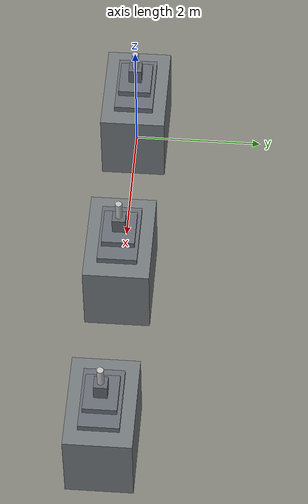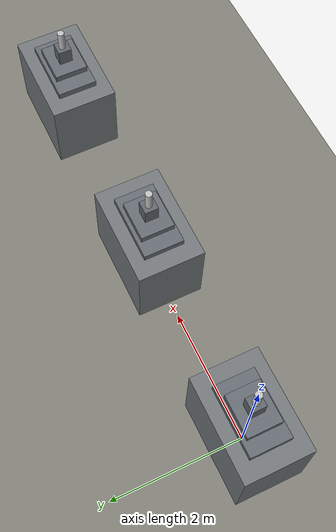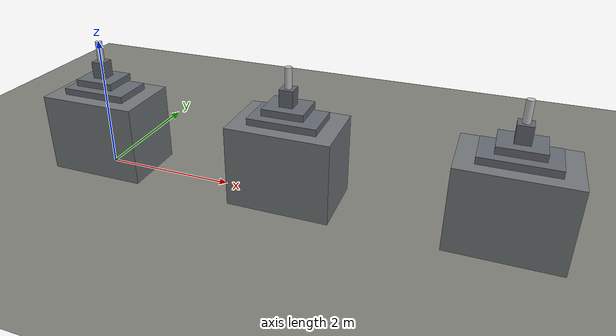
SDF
<?xml version="1.0" ?>
<sdf version="1.9">
  <world name="cnc_factory">

    <!-- Physics                                                       -->
    <physics name="default_physics" type="ode">
      <max_step_size>0.001</max_step_size>
      <real_time_update_rate>1000</real_time_update_rate>
      <real_time_factor>1.0</real_time_factor>
    </physics>

    <!-- Plugins                                                       -->
    <!-- Core Gazebo system plugins -->
    <plugin filename="gz-sim-physics-system"
            name="gz::sim::systems::Physics">
    </plugin>
    <plugin filename="gz-sim-user-commands-system"
            name="gz::sim::systems::UserCommands">
    </plugin>
    <plugin filename="gz-sim-scene-broadcaster-system"
            name="gz::sim::systems::SceneBroadcaster">
    </plugin>
    <plugin filename="gz-sim-sensors-system"
            name="gz::sim::systems::Sensors">
      <render_engine>ogre2</render_engine>
    </plugin>
    <plugin filename="gz-sim-imu-system"
            name="gz::sim::systems::Imu">
    </plugin>
    <plugin filename="gz-sim-contact-system"
            name="gz::sim::systems::Contact">
    </plugin>

    <!-- Lighting                                                      -->
    <!-- Ambient scene lighting -->
    <scene>
      <ambient>0.4 0.4 0.4 1.0</ambient>
      <background>0.7 0.75 0.8 1.0</background>
      <shadows>true</shadows>
    </scene>

    <!-- Main overhead directional light (factory ceiling) -->
    <light type="directional" name="factory_overhead_light">
      <cast_shadows>true</cast_shadows>
      <pose>0 0 10 0 0 0</pose>
      <diffuse>0.9 0.9 0.85 1.0</diffuse>
      <specular>0.3 0.3 0.3 1.0</specular>
      <direction>-0.2 0.1 -1.0</direction>
      <attenuation>
        <range>100</range>
        <constant>0.9</constant>
        <linear>0.01</linear>
        <quadratic>0.001</quadratic>
      </attenuation>
    </light>

    <!-- Secondary fill light -->
    <light type="directional" name="factory_fill_light">
      <cast_shadows>false</cast_shadows>
      <pose>0 0 8 0 0 0</pose>
      <diffuse>0.4 0.4 0.45 1.0</diffuse>
      <specular>0.1 0.1 0.1 1.0</specular>
      <direction>0.3 -0.2 -0.8</direction>
    </light>

    <!-- Ground Plane – Industrial Floor                               -->
    <model name="ground_plane">
      <static>true</static>
      <link name="ground_link">
        <collision name="ground_collision">
          <geometry>
            <plane>
              <normal>0 0 1</normal>
              <size>50 50</size>
            </plane>
          </geometry>
          <surface>
            <friction>
              <ode>
                <mu>0.8</mu>
                <mu2>0.8</mu2>
              </ode>
            </friction>
          </surface>
        </collision>
        <visual name="ground_visual">
          <geometry>
            <plane>
              <normal>0 0 1</normal>
              <size>50 50</size>
            </plane>
          </geometry>
          <material>
            <ambient>0.45 0.45 0.42 1.0</ambient>
            <diffuse>0.5 0.5 0.47 1.0</diffuse>
            <specular>0.15 0.15 0.15 1.0</specular>
            <!-- Industrial concrete floor appearance -->
          </material>
        </visual>
      </link>
    </model>

    <!-- CNC Machine 1                                                 -->
    <include>
      <uri>model://cnc_machine</uri>
      <name>cnc_machine_1</name>
      <pose>0 0 0 0 0 0</pose>
    </include>

    <!-- CNC Machine 2                                                 -->
    <include>
      <uri>model://cnc_machine</uri>
      <name>cnc_machine_2</name>
      <pose>3 0 0 0 0 0</pose>
    </include>

    <!-- CNC Machine 3                                                 -->
    <include>
      <uri>model://cnc_machine</uri>
      <name>cnc_machine_3</name>
      <pose>6 0 0 0 0 0</pose>
    </include>

  </world>
</sdf>

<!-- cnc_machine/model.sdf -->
<sdf version="1.9">
  <model name="cnc_machine">
    <static>false</static>

    <!-- Base Frame  (1.5 x 1.0 x 1.2 m)                           -->
    <link name="base_link">
      <pose>0 0 0.6 0 0 0</pose>
      <inertial>
        <mass>500.0</mass>
        <inertia>
          <ixx>73.33</ixx>
          <ixy>0</ixy>
          <ixz>0</ixz>
          <iyy>61.88</iyy>
          <iyz>0</iyz>
          <izz>27.08</izz>
        </inertia>
      </inertial>
      <collision name="base_collision">
        <geometry>
          <box>
            <size>1.5 1.0 1.2</size>
          </box>
        </geometry>
      </collision>
      <visual name="base_visual">
        <geometry>
          <box>
            <size>1.5 1.0 1.2</size>
          </box>
        </geometry>
        <material>
          <ambient>0.35 0.37 0.38 1.0</ambient>
          <diffuse>0.45 0.47 0.48 1.0</diffuse>
          <specular>0.25 0.25 0.25 1.0</specular>
        </material>
      </visual>
    </link>

    <!-- X-Axis Carriage                                            -->
    <link name="x_carriage">
      <pose>0 0 1.25 0 0 0</pose>
      <inertial>
        <mass>30.0</mass>
        <inertia>
          <ixx>0.55</ixx>
          <ixy>0</ixy>
          <ixz>0</ixz>
          <iyy>2.53</iyy>
          <iyz>0</iyz>
          <izz>2.28</izz>
        </inertia>
      </inertial>
      <collision name="x_carriage_collision">
        <geometry>
          <box>
            <size>1.0 0.6 0.1</size>
          </box>
        </geometry>
      </collision>
      <visual name="x_carriage_visual">
        <geometry>
          <box>
            <size>1.0 0.6 0.1</size>
          </box>
        </geometry>
        <material>
          <ambient>0.3 0.32 0.35 1.0</ambient>
          <diffuse>0.4 0.42 0.45 1.0</diffuse>
          <specular>0.3 0.3 0.3 1.0</specular>
        </material>
      </visual>
    </link>

    <joint name="x_axis_joint" type="prismatic">
      <parent>base_link</parent>
      <child>x_carriage</child>
      <axis>
        <xyz>1 0 0</xyz>
        <limit>
          <lower>-0.5</lower>
          <upper>0.5</upper>
          <effort>500</effort>
          <velocity>0.5</velocity>
        </limit>
        <dynamics>
          <damping>50.0</damping>
          <friction>5.0</friction>
        </dynamics>
      </axis>
    </joint>

    <!-- Y-Axis Carriage                                            -->
    <link name="y_carriage">
      <pose>0 0 1.40 0 0 0</pose>
      <inertial>
        <mass>20.0</mass>
        <inertia>
          <ixx>0.27</ixx>
          <ixy>0</ixy>
          <ixz>0</ixz>
          <iyy>1.07</iyy>
          <iyz>0</iyz>
          <izz>1.0</izz>
        </inertia>
      </inertial>
      <collision name="y_carriage_collision">
        <geometry>
          <box>
            <size>0.6 0.5 0.1</size>
          </box>
        </geometry>
      </collision>
      <visual name="y_carriage_visual">
        <geometry>
          <box>
            <size>0.6 0.5 0.1</size>
          </box>
        </geometry>
        <material>
          <ambient>0.3 0.32 0.35 1.0</ambient>
          <diffuse>0.4 0.42 0.45 1.0</diffuse>
          <specular>0.3 0.3 0.3 1.0</specular>
        </material>
      </visual>
    </link>

    <joint name="y_axis_joint" type="prismatic">
      <parent>x_carriage</parent>
      <child>y_carriage</child>
      <axis>
        <xyz>0 1 0</xyz>
        <limit>
          <lower>-0.3</lower>
          <upper>0.3</upper>
          <effort>400</effort>
          <velocity>0.5</velocity>
        </limit>
        <dynamics>
          <damping>40.0</damping>
          <friction>4.0</friction>
        </dynamics>
      </axis>
    </joint>

    <!-- Z-Axis Carriage                                            -->
    <link name="z_carriage">
      <pose>0 0 1.55 0 0 0</pose>
      <inertial>
        <mass>15.0</mass>
        <inertia>
          <ixx>0.35</ixx>
          <ixy>0</ixy>
          <ixz>0</ixz>
          <iyy>0.35</iyy>
          <iyz>0</iyz>
          <izz>0.08</izz>
        </inertia>
      </inertial>
      <collision name="z_carriage_collision">
        <geometry>
          <box>
            <size>0.2 0.2 0.3</size>
          </box>
        </geometry>
      </collision>
      <visual name="z_carriage_visual">
        <geometry>
          <box>
            <size>0.2 0.2 0.3</size>
          </box>
        </geometry>
        <material>
          <ambient>0.28 0.30 0.33 1.0</ambient>
          <diffuse>0.38 0.40 0.43 1.0</diffuse>
          <specular>0.3 0.3 0.3 1.0</specular>
        </material>
      </visual>
    </link>

    <joint name="z_axis_joint" type="prismatic">
      <parent>y_carriage</parent>
      <child>z_carriage</child>
      <axis>
        <xyz>0 0 1</xyz>
        <limit>
          <lower>-0.3</lower>
          <upper>0.3</upper>
          <effort>300</effort>
          <velocity>0.3</velocity>
        </limit>
        <dynamics>
          <damping>30.0</damping>
          <friction>3.0</friction>
        </dynamics>
      </axis>
    </joint>

    <!-- Spindle Assembly  (cylinder on top of Z carriage)          -->
    <link name="spindle">
      <pose>0 0 1.85 0 0 0</pose>
      <inertial>
        <mass>8.0</mass>
        <inertia>
          <ixx>0.087</ixx>
          <ixy>0</ixy>
          <ixz>0</ixz>
          <iyy>0.087</iyy>
          <iyz>0</iyz>
          <izz>0.01</izz>
        </inertia>
      </inertial>
      <collision name="spindle_collision">
        <geometry>
          <cylinder>
            <radius>0.05</radius>
            <length>0.3</length>
          </cylinder>
        </geometry>
      </collision>
      <visual name="spindle_visual">
        <geometry>
          <cylinder>
            <radius>0.05</radius>
            <length>0.3</length>
          </cylinder>
        </geometry>
        <material>
          <ambient>0.6 0.6 0.6 1.0</ambient>
          <diffuse>0.75 0.75 0.75 1.0</diffuse>
          <specular>0.8 0.8 0.8 1.0</specular>
        </material>
      </visual>
    </link>

    <joint name="spindle_joint" type="revolute">
      <parent>z_carriage</parent>
      <child>spindle</child>
      <axis>
        <xyz>0 0 1</xyz>
        <limit>
          <lower>-1e16</lower>
          <upper>1e16</upper>
          <effort>20</effort>
          <velocity>628.32</velocity>  <!-- ~6000 RPM -->
        </limit>
        <dynamics>
          <damping>0.01</damping>
          <friction>0.005</friction>
        </dynamics>
      </axis>
    </joint>

    <!-- Joint state publisher plugin -->
    <plugin filename="gz-sim-joint-state-publisher-system"
            name="gz::sim::systems::JointStatePublisher">
      <joint_name>x_axis_joint</joint_name>
      <joint_name>y_axis_joint</joint_name>
      <joint_name>z_axis_joint</joint_name>
      <joint_name>spindle_joint</joint_name>
    </plugin>

  </model>
</sdf>
